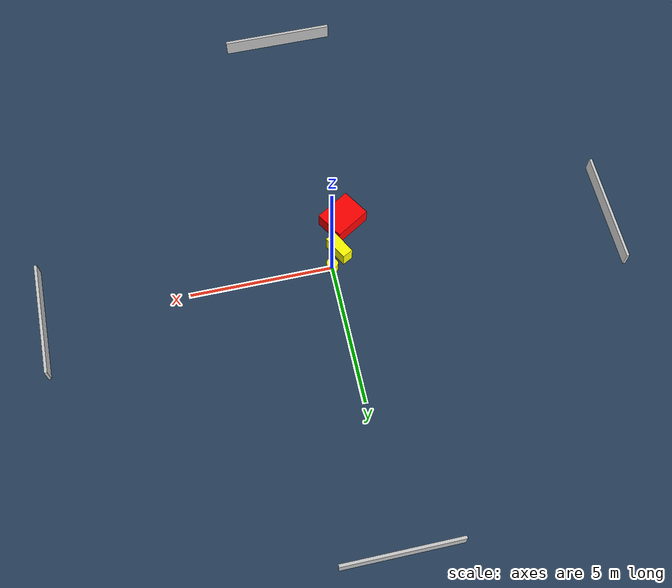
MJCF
<?xml version="1.0" ?>
<mujoco model="generated_environment">
  <option timestep="0.01" integrator="RK4" cone="elliptic"/>
  <default>
    <geom density="1"/>
  </default>
  <asset>
    <texture builtin="gradient" height="3072" name="skybox" rgb1="0.3 0.5 0.7" rgb2="0 0 0" type="skybox" width="512"/>
    <texture builtin="checker" height="300" name="groundplane" rgb1="0.2 0.3 0.4" rgb2="0.1 0.2 0.3" type="2d" width="300"/>
    <material name="groundplane" reflectance="0.2" texrepeat="5 5" texture="groundplane"/>
  </asset>
  <worldbody>
    <light dir="0 0 -1" directional="true" pos="0 0 1.5"/>
    <geom condim="3" friction="0.5 0.005 0.001" material="groundplane" name="floor" pos="0 0 0" size="0 0 0.05" type="plane"/>
    <body name="walls">
      <geom name="wall_1" condim="4" pos="-10.0 0.0 0.3" rgba="0.800000011920929 0.800000011920929 0.800000011920929 1.0" size="0.05 2.0 0.3" type="box"/>
      <geom name="wall_2" condim="4" pos="10.0 0.0 0.3" rgba="0.800000011920929 0.800000011920929 0.800000011920929 1.0" size="0.05 2.0 0.3" type="box"/>
      <geom name="wall_3" condim="4" pos="0.0 -10.0 0.3" rgba="0.800000011920929 0.800000011920929 0.800000011920929 1.0" size="2.0 0.05 0.3" type="box"/>
      <geom name="wall_4" condim="4" pos="0.0 10.0 0.3" rgba="0.800000011920929 0.800000011920929 0.800000011920929 1.0" size="2.0 0.05 0.3" type="box"/>
    </body>
    <body name="robot">
      <joint name="joint_x" type="slide" pos="0 0 0" axis="1 0 0"/>
      <joint name="joint_y" type="slide" pos="0 0 0" axis="0 1 0"/>
      <geom name="robot" type="cylinder" pos="0.0 0.0 0.2" size="0.2 0.2 0.0" mass="5.0" friction="1.0 0.005 0.0001" condim="4" rgba="1.0 1.0 0.0 1.0"/>
    </body>
    <body name="obstacle_1_movable">
      <geom name="obstacle_1_movable" condim="4" pos="-0.3577940978249925 -0.5520746997376221 0.3" euler="0 0 28.853847411736236" friction="0.0 0.005 0.001" rgba="1.0 1.0 0.0 1.0" size="0.20175096383300456 0.4606900068478591 0.3" type="box" mass="0.1"/>
      <joint type="free"/>
    </body>
    <body name="obstacle_2_static">
      <geom name="obstacle_2_static" condim="4" pos="-0.7466858618948315 -1.7143125916998219 0.3" euler="0 0 301.7478772841932" friction="0.0 0.005 0.001" rgba="1.0 0.0 0.0 1.0" size="0.5276735695944069 0.6674050018618842 0.3" type="box"/>
    </body>
  </worldbody>
  <actuator>
    <motor name="actuator_x" joint="joint_x" gear="1" ctrlrange="-1 1"/>
    <motor name="actuator_y" joint="joint_y" gear="1" ctrlrange="-1 1"/>
  </actuator>
</mujoco>
